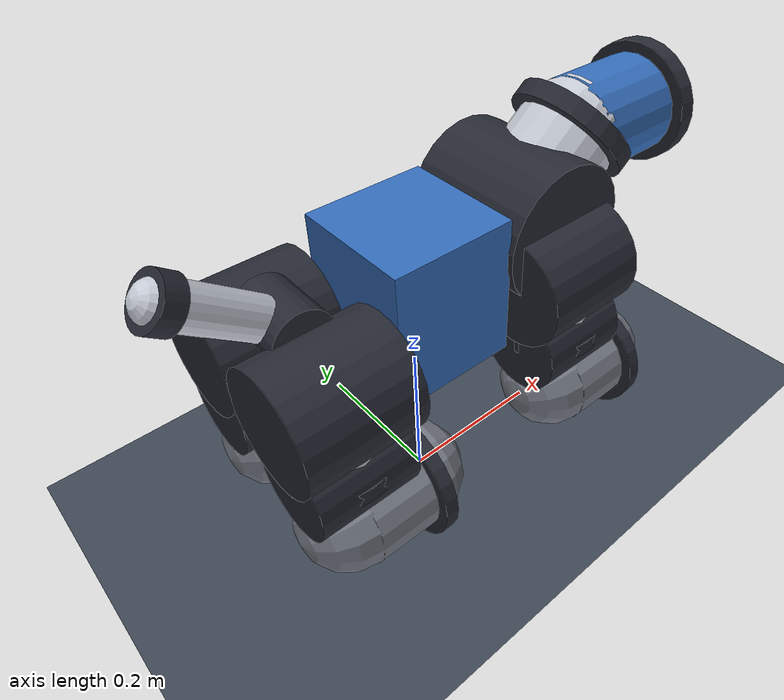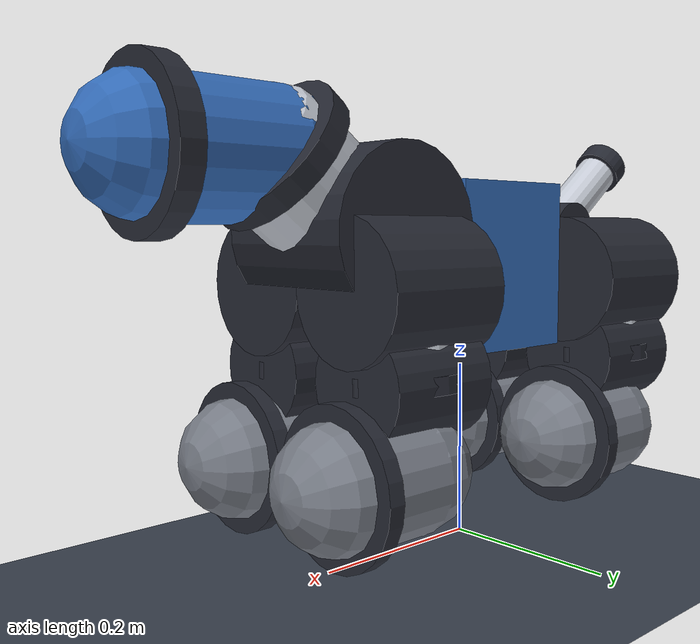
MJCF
<mujoco model="anatomy_creature">
  <compiler angle="radian" autolimits="true"/>
  <option timestep="0.002" gravity="0 0 -9.81"/>
  <visual>
    <headlight ambient="0.45 0.45 0.48" diffuse="0.65 0.65 0.68" specular="0.22 0.22 0.22"/>
    <quality shadowsize="4096"/>
    <map znear="0.01" zfar="60"/>
  </visual>
  <default>
    <joint damping="0.8" armature="0.01"/>
    <geom friction="1 0.05 0.001"/>
  </default>
  <asset>
    <texture name="skybox" type="skybox" builtin="gradient" rgb1="0.16 0.18 0.23" rgb2="0.03 0.04 0.06" width="512" height="512"/>
    <texture name="grid" type="2d" builtin="checker" rgb1="0.21 0.24 0.29" rgb2="0.26 0.30 0.35" width="300" height="300"/>
    <material name="grid" texture="grid" texrepeat="6 6" specular="0.1" shininess="0.1" reflectance="0.02"/>
    <material name="mat_body" rgba="0.84 0.86 0.89 1" specular="0.35" shininess="0.45" reflectance="0.05"/>
    <material name="mat_joint" rgba="0.15 0.16 0.20 1" specular="0.6" shininess="0.7" reflectance="0.1"/>
    <material name="mat_accent" rgba="0.92 0.47 0.13 1" specular="0.45" shininess="0.55"/>
    <material name="mat_ee" rgba="0.22 0.24 0.29 1" specular="0.5" shininess="0.6"/>
    <material name="mat_alu" rgba="0.78 0.80 0.84 1" specular="0.55" shininess="0.5" reflectance="0.12"/>
    <material name="mat_steel" rgba="0.34 0.36 0.40 1" specular="0.7" shininess="0.7" reflectance="0.18"/>
    <material name="mat_cf" rgba="0.11 0.12 0.14 1" specular="0.45" shininess="0.4" reflectance="0.06"/>
    <material name="mat_ti" rgba="0.60 0.60 0.65 1" specular="0.5" shininess="0.55" reflectance="0.1"/>
    <material name="mat_shell" rgba="0.20 0.42 0.72 1" specular="0.4" shininess="0.5" reflectance="0.05"/>
    <material name="mat_metal" rgba="0.47 0.49 0.53 1" specular="0.78" shininess="0.78" reflectance="0.22"/>
    <material name="mat_rubber" rgba="0.13 0.13 0.15 1" specular="0.15" shininess="0.15"/>
  </asset>
  <worldbody>
    <light name="key" pos="1.6 -1.1 3.0" dir="-0.45 0.32 -1" diffuse="0.55 0.55 0.58" specular="0.25 0.25 0.25"/>
    <light name="fill" pos="-2.0 1.6 2.2" dir="0.5 -0.42 -1" diffuse="0.22 0.22 0.26"/>
    <geom name="floor" type="plane" size="3 3 0.1" material="grid"/>
    <body name="torso" pos="0.00000 0.00000 0.22500">
      <freejoint name="torso_free"/>
      <geom name="torso_geom" type="box" pos="0 0 0.09200" size="0.08000 0.08000 0.09200" mass="1.77989" material="mat_shell"/>
      <body name="neck" pos="0.16500 0.00000 0.12880" euler="-0.00000 0.91510 -0.00000">
        <joint name="neck_joint" type="hinge" axis="0.0000 1.0000 0.0000" range="-2.6000 2.6000"/>
        <geom name="neck_geom" type="capsule" fromto="0 0 0 0 0 0.12100" size="0.06720" mass="0.29272" material="mat_alu"/>
        <geom name="neck_motor" type="cylinder" fromto="-0.00000 -0.08720 -0.00000 0.00000 0.08720 0.00000" size="0.08920" material="mat_joint" mass="0" contype="0" conaffinity="0"/>
        <geom name="neck_collar" type="cylinder" fromto="0 0 0.10900 0 0 0.13300" size="0.08198" material="mat_joint" mass="0" contype="0" conaffinity="0"/>
        <body name="head" pos="0.00000 0.00000 0.12100" euler="-0.00000 0.65570 -0.00000">
          <geom name="head_geom" type="capsule" fromto="0 0 0 0 0 0.13200" size="0.06624" mass="0.31477" material="mat_shell"/>
          <geom name="head_collar" type="cylinder" fromto="0 0 0.12000 0 0 0.14400" size="0.08081" material="mat_joint" mass="0" contype="0" conaffinity="0"/>
        </body>

      </body>

      <body name="tail" pos="-0.16500 0.00000 0.12880" euler="-0.00000 -0.91510 -3.14159">
        <joint name="tail_joint" type="hinge" axis="0.0000 1.0000 0.0000" range="-2.6000 2.6000"/>
        <geom name="tail_geom" type="capsule" fromto="0 0 0 0 0 0.14000" size="0.02520" mass="0.12701" material="mat_alu"/>
        <geom name="tail_motor" type="cylinder" fromto="-0.00000 -0.04032 -0.00000 0.00000 0.04032 0.00000" size="0.03654" material="mat_joint" mass="0" contype="0" conaffinity="0"/>
        <geom name="tail_collar" type="cylinder" fromto="0 0 0.12800 0 0 0.15200" size="0.03074" material="mat_joint" mass="0" contype="0" conaffinity="0"/>
      </body>

      <body name="leg1_l_0" pos="0.16500 0.07200 0.07360" euler="-3.09163 0.00000 1.57080">
        <joint name="leg1_l_0_joint" type="hinge" axis="0.0000 1.0000 0.0000" range="-2.6000 2.6000"/>
        <geom name="leg1_l_0_geom" type="capsule" fromto="0 0 0 0 0 0.09000" size="0.05130" mass="0.16621" material="mat_alu"/>
        <geom name="leg1_l_0_motor" type="cylinder" fromto="-0.00000 -0.07130 -0.00000 0.00000 0.07130 0.00000" size="0.07330" material="mat_joint" mass="0" contype="0" conaffinity="0"/>
        <geom name="leg1_l_0_collar" type="cylinder" fromto="0 0 0.08100 0 0 0.09900" size="0.06259" material="mat_joint" mass="0" contype="0" conaffinity="0"/>
        <body name="leg1_l_1" pos="0.00000 0.00000 0.09000">
          <joint name="leg1_l_1_joint" type="hinge" axis="0.0000 1.0000 0.0000" range="-2.6000 2.6000"/>
          <geom name="leg1_l_1_geom" type="capsule" fromto="0 0 0 0 0 0.09000" size="0.04207" mass="0.13629" material="mat_alu"/>
          <geom name="leg1_l_1_motor" type="cylinder" fromto="-0.00000 -0.06207 -0.00000 0.00000 0.06207 0.00000" size="0.06100" material="mat_joint" mass="0" contype="0" conaffinity="0"/>
          <geom name="leg1_l_1_collar" type="cylinder" fromto="0 0 0.08100 0 0 0.09900" size="0.05132" material="mat_joint" mass="0" contype="0" conaffinity="0"/>
          <body name="leg1_l_2" pos="0.00000 0.00000 0.09000" euler="1.57080 0.00000 1.52084">
            <geom name="leg1_l_2_geom" type="capsule" fromto="0 0 0 0 0 0.08640" size="0.06554" mass="0.20385" material="mat_metal"/>
            <geom name="leg1_l_2_collar" type="cylinder" fromto="0 0 0.07776 0 0 0.09504" size="0.07996" material="mat_joint" mass="0" contype="0" conaffinity="0"/>
          </body>

        </body>

      </body>

      <body name="leg1_r_0" pos="0.16500 -0.07200 0.07360" euler="3.09163 0.00000 -1.57080">
        <joint name="leg1_r_0_joint" type="hinge" axis="0.0000 1.0000 0.0000" range="-2.6000 2.6000"/>
        <geom name="leg1_r_0_geom" type="capsule" fromto="0 0 0 0 0 0.09000" size="0.05130" mass="0.16621" material="mat_alu"/>
        <geom name="leg1_r_0_motor" type="cylinder" fromto="-0.00000 -0.07130 -0.00000 0.00000 0.07130 0.00000" size="0.07330" material="mat_joint" mass="0" contype="0" conaffinity="0"/>
        <geom name="leg1_r_0_collar" type="cylinder" fromto="0 0 0.08100 0 0 0.09900" size="0.06259" material="mat_joint" mass="0" contype="0" conaffinity="0"/>
        <body name="leg1_r_1" pos="0.00000 0.00000 0.09000">
          <joint name="leg1_r_1_joint" type="hinge" axis="0.0000 1.0000 0.0000" range="-2.6000 2.6000"/>
          <geom name="leg1_r_1_geom" type="capsule" fromto="0 0 0 0 0 0.09000" size="0.04207" mass="0.13629" material="mat_alu"/>
          <geom name="leg1_r_1_motor" type="cylinder" fromto="-0.00000 -0.06207 -0.00000 0.00000 0.06207 0.00000" size="0.06100" material="mat_joint" mass="0" contype="0" conaffinity="0"/>
          <geom name="leg1_r_1_collar" type="cylinder" fromto="0 0 0.08100 0 0 0.09900" size="0.05132" material="mat_joint" mass="0" contype="0" conaffinity="0"/>
          <body name="leg1_r_2" pos="0.00000 0.00000 0.09000" euler="-1.57080 0.00000 -1.52084">
            <geom name="leg1_r_2_geom" type="capsule" fromto="0 0 0 0 0 0.08640" size="0.06554" mass="0.20385" material="mat_metal"/>
            <geom name="leg1_r_2_collar" type="cylinder" fromto="0 0 0.07776 0 0 0.09504" size="0.07996" material="mat_joint" mass="0" contype="0" conaffinity="0"/>
          </body>

        </body>

      </body>

      <body name="leg2_l_0" pos="-0.16500 0.07200 0.07360" euler="-3.09163 0.00000 1.57080">
        <joint name="leg2_l_0_joint" type="hinge" axis="0.0000 1.0000 0.0000" range="-2.6000 2.6000"/>
        <geom name="leg2_l_0_geom" type="capsule" fromto="0 0 0 0 0 0.09000" size="0.05130" mass="0.16621" material="mat_alu"/>
        <geom name="leg2_l_0_motor" type="cylinder" fromto="-0.00000 -0.07130 -0.00000 0.00000 0.07130 0.00000" size="0.07330" material="mat_joint" mass="0" contype="0" conaffinity="0"/>
        <geom name="leg2_l_0_collar" type="cylinder" fromto="0 0 0.08100 0 0 0.09900" size="0.06259" material="mat_joint" mass="0" contype="0" conaffinity="0"/>
        <body name="leg2_l_1" pos="0.00000 0.00000 0.09000">
          <joint name="leg2_l_1_joint" type="hinge" axis="0.0000 1.0000 0.0000" range="-2.6000 2.6000"/>
          <geom name="leg2_l_1_geom" type="capsule" fromto="0 0 0 0 0 0.09000" size="0.04207" mass="0.13629" material="mat_alu"/>
          <geom name="leg2_l_1_motor" type="cylinder" fromto="-0.00000 -0.06207 -0.00000 0.00000 0.06207 0.00000" size="0.06100" material="mat_joint" mass="0" contype="0" conaffinity="0"/>
          <geom name="leg2_l_1_collar" type="cylinder" fromto="0 0 0.08100 0 0 0.09900" size="0.05132" material="mat_joint" mass="0" contype="0" conaffinity="0"/>
          <body name="leg2_l_2" pos="0.00000 0.00000 0.09000" euler="1.57080 0.00000 1.52084">
            <geom name="leg2_l_2_geom" type="capsule" fromto="0 0 0 0 0 0.08640" size="0.06554" mass="0.20385" material="mat_metal"/>
            <geom name="leg2_l_2_collar" type="cylinder" fromto="0 0 0.07776 0 0 0.09504" size="0.07996" material="mat_joint" mass="0" contype="0" conaffinity="0"/>
          </body>

        </body>

      </body>

      <body name="leg2_r_0" pos="-0.16500 -0.07200 0.07360" euler="3.09163 0.00000 -1.57080">
        <joint name="leg2_r_0_joint" type="hinge" axis="0.0000 1.0000 0.0000" range="-2.6000 2.6000"/>
        <geom name="leg2_r_0_geom" type="capsule" fromto="0 0 0 0 0 0.09000" size="0.05130" mass="0.16621" material="mat_alu"/>
        <geom name="leg2_r_0_motor" type="cylinder" fromto="-0.00000 -0.07130 -0.00000 0.00000 0.07130 0.00000" size="0.07330" material="mat_joint" mass="0" contype="0" conaffinity="0"/>
        <geom name="leg2_r_0_collar" type="cylinder" fromto="0 0 0.08100 0 0 0.09900" size="0.06259" material="mat_joint" mass="0" contype="0" conaffinity="0"/>
        <body name="leg2_r_1" pos="0.00000 0.00000 0.09000">
          <joint name="leg2_r_1_joint" type="hinge" axis="0.0000 1.0000 0.0000" range="-2.6000 2.6000"/>
          <geom name="leg2_r_1_geom" type="capsule" fromto="0 0 0 0 0 0.09000" size="0.04207" mass="0.13629" material="mat_alu"/>
          <geom name="leg2_r_1_motor" type="cylinder" fromto="-0.00000 -0.06207 -0.00000 0.00000 0.06207 0.00000" size="0.06100" material="mat_joint" mass="0" contype="0" conaffinity="0"/>
          <geom name="leg2_r_1_collar" type="cylinder" fromto="0 0 0.08100 0 0 0.09900" size="0.05132" material="mat_joint" mass="0" contype="0" conaffinity="0"/>
          <body name="leg2_r_2" pos="0.00000 0.00000 0.09000" euler="-1.57080 0.00000 -1.52084">
            <geom name="leg2_r_2_geom" type="capsule" fromto="0 0 0 0 0 0.08640" size="0.06554" mass="0.20385" material="mat_metal"/>
            <geom name="leg2_r_2_collar" type="cylinder" fromto="0 0 0.07776 0 0 0.09504" size="0.07996" material="mat_joint" mass="0" contype="0" conaffinity="0"/>
            <site name="ee_site" pos="0 0 0.08640" size="0.01"/>
          </body>

        </body>

      </body>

    </body>
  </worldbody>
  <actuator>
    <motor name="neck_motor" joint="neck_joint" gear="1" forcerange="-4.96 4.96"/>
    <motor name="tail_motor" joint="tail_joint" gear="1" forcerange="-1.00 1.00"/>
    <motor name="leg1_l_0_motor" joint="leg1_l_0_joint" gear="1" forcerange="-5.22 5.22"/>
    <motor name="leg1_l_1_motor" joint="leg1_l_1_joint" gear="1" forcerange="-3.46 3.46"/>
    <motor name="leg1_r_0_motor" joint="leg1_r_0_joint" gear="1" forcerange="-5.22 5.22"/>
    <motor name="leg1_r_1_motor" joint="leg1_r_1_joint" gear="1" forcerange="-3.46 3.46"/>
    <motor name="leg2_l_0_motor" joint="leg2_l_0_joint" gear="1" forcerange="-5.22 5.22"/>
    <motor name="leg2_l_1_motor" joint="leg2_l_1_joint" gear="1" forcerange="-3.46 3.46"/>
    <motor name="leg2_r_0_motor" joint="leg2_r_0_joint" gear="1" forcerange="-5.22 5.22"/>
    <motor name="leg2_r_1_motor" joint="leg2_r_1_joint" gear="1" forcerange="-3.46 3.46"/>
  </actuator>
  <keyframe>
    <key name="rest" qpos="0.00000 0.00000 0.22500 1.00000 0.00000 0.00000 0.00000 0.00000 0.00000 0.00000 0.12000 0.00000 0.12000 0.00000 0.12000 0.00000 0.12000"/>
  </keyframe>
</mujoco>
